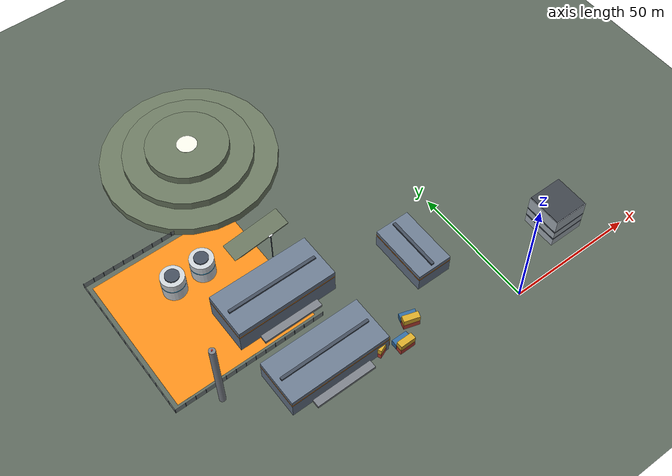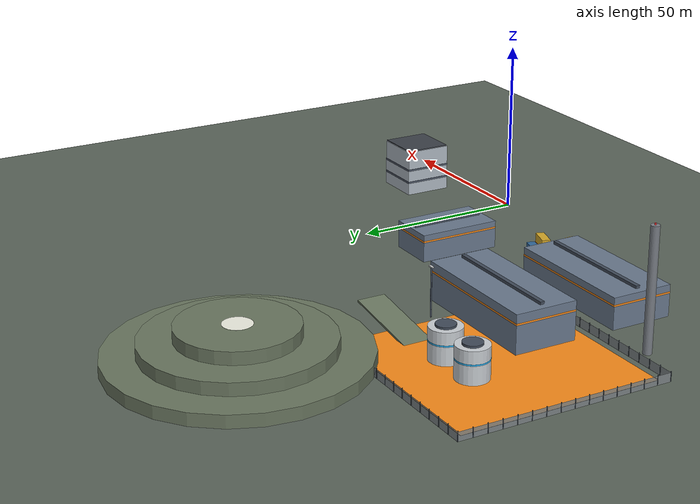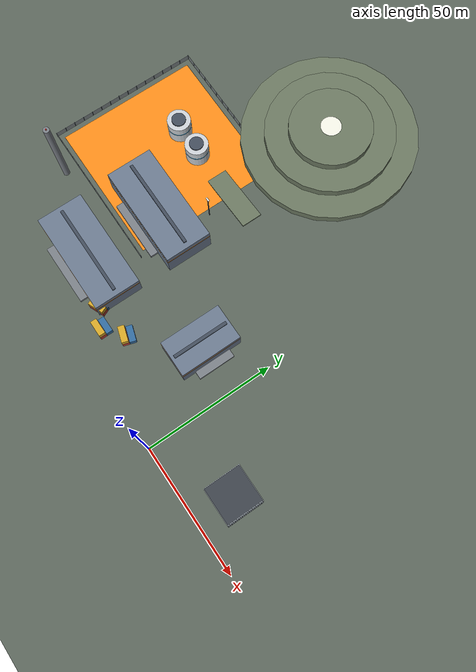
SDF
<sdf version="1.9">
 <world name="autonomous_city">
  <model name="ground">
   <static>true</static>
   <link name="link">
    <collision name="collision">
     <geometry><plane><normal>0 0 1</normal><size>600 600</size></plane></geometry>
     <surface><friction><ode><mu>100</mu><mu2>50</mu2></ode></friction></surface>
    </collision>
    <visual name="visual">
     <geometry><plane><normal>0 0 1</normal><size>600 600</size></plane></geometry>
     <material>
      <ambient>0.36 0.40 0.36 1</ambient>
      <diffuse>0.36 0.40 0.36 1</diffuse>
      <specular>0.15 0.15 0.15 1</specular>
     </material>
    </visual>
   </link>
  </model>
  <model name="building_01">
   <static>true</static>
   <pose>30 15 0 0 0 0.0</pose>
   <link name="link">
    <visual name="core">
     <pose>0 0 7.0 0 0 0</pose>
     <geometry><box><size>14.000 14.000 14.000</size></box></geometry>
     <material>
      <ambient>0.70 0.74 0.78 1</ambient>
      <diffuse>0.70 0.74 0.78 1</diffuse>
      <specular>0.15 0.15 0.15 1</specular>
     </material>
    </visual>
    <collision name="core_c">
     <pose>0 0 7.0 0 0 0</pose>
     <geometry><box><size>14.000 14.000 14.000</size></box></geometry>
    </collision>
    <visual name="band1">
     <pose>0 0 4.00 0 0 0</pose>
     <geometry><box><size>14.060 14.060 0.600</size></box></geometry>
     <material>
      <ambient>0.30 0.34 0.40 1</ambient>
      <diffuse>0.30 0.34 0.40 1</diffuse>
      <specular>0.15 0.15 0.15 1</specular>
     </material>
    </visual>
    <visual name="band2">
     <pose>0 0 8.00 0 0 0</pose>
     <geometry><box><size>14.060 14.060 0.600</size></box></geometry>
     <material>
      <ambient>0.30 0.34 0.40 1</ambient>
      <diffuse>0.30 0.34 0.40 1</diffuse>
      <specular>0.15 0.15 0.15 1</specular>
     </material>
    </visual>
    <visual name="roof">
     <pose>0 0 14.15 0 0 0</pose>
     <geometry><box><size>13.600 13.600 0.300</size></box></geometry>
     <material>
      <ambient>0.24 0.26 0.29 1</ambient>
      <diffuse>0.24 0.26 0.29 1</diffuse>
      <specular>0.15 0.15 0.15 1</specular>
     </material>
    </visual>
    <collision name="roof_c">
     <pose>0 0 14.15 0 0 0</pose>
     <geometry><box><size>13.600 13.600 0.300</size></box></geometry>
    </collision>
   </link>
  </model>
  <model name="warehouse_01">
   <static>true</static>
   <pose>-70 20 0 0 0 0.0</pose>
   <link name="link">
    <visual name="hall">
     <pose>0 0 4.5 0 0 0</pose>
     <geometry><box><size>40.000 18.000 9.000</size></box></geometry>
     <material>
      <ambient>0.42 0.48 0.56 1</ambient>
      <diffuse>0.42 0.48 0.56 1</diffuse>
      <specular>0.15 0.15 0.15 1</specular>
     </material>
    </visual>
    <collision name="hall_c">
     <pose>0 0 4.5 0 0 0</pose>
     <geometry><box><size>40.000 18.000 9.000</size></box></geometry>
    </collision>
    <visual name="ridge">
     <pose>0 0 9.4 0 0 0</pose>
     <geometry><box><size>36.000 1.200 0.800</size></box></geometry>
     <material>
      <ambient>0.26 0.30 0.36 1</ambient>
      <diffuse>0.26 0.30 0.36 1</diffuse>
      <specular>0.15 0.15 0.15 1</specular>
     </material>
    </visual>
    <collision name="ridge_c">
     <pose>0 0 9.4 0 0 0</pose>
     <geometry><box><size>36.000 1.200 0.800</size></box></geometry>
    </collision>
    <visual name="stripe">
     <pose>0 0 6.75 0 0 0</pose>
     <geometry><box><size>40.050 18.050 0.500</size></box></geometry>
     <material>
      <ambient>0.98 0.55 0.10 1</ambient>
      <diffuse>0.98 0.55 0.10 1</diffuse>
      <specular>0.15 0.15 0.15 1</specular>
     </material>
    </visual>
    <visual name="dock">
     <pose>0 -10.5 0.6 0 0 0</pose>
     <geometry><box><size>24.000 3.000 1.200</size></box></geometry>
     <material>
      <ambient>0.48 0.50 0.53 1</ambient>
      <diffuse>0.48 0.50 0.53 1</diffuse>
      <specular>0.15 0.15 0.15 1</specular>
     </material>
    </visual>
    <collision name="dock_c">
     <pose>0 -10.5 0.6 0 0 0</pose>
     <geometry><box><size>24.000 3.000 1.200</size></box></geometry>
    </collision>
   </link>
  </model>
  <model name="warehouse_02">
   <static>true</static>
   <pose>-70 50 0 0 0 0.0</pose>
   <link name="link">
    <visual name="hall">
     <pose>0 0 5.5 0 0 0</pose>
     <geometry><box><size>40.000 18.000 11.000</size></box></geometry>
     <material>
      <ambient>0.42 0.48 0.56 1</ambient>
      <diffuse>0.42 0.48 0.56 1</diffuse>
      <specular>0.15 0.15 0.15 1</specular>
     </material>
    </visual>
    <collision name="hall_c">
     <pose>0 0 5.5 0 0 0</pose>
     <geometry><box><size>40.000 18.000 11.000</size></box></geometry>
    </collision>
    <visual name="ridge">
     <pose>0 0 11.4 0 0 0</pose>
     <geometry><box><size>36.000 1.200 0.800</size></box></geometry>
     <material>
      <ambient>0.26 0.30 0.36 1</ambient>
      <diffuse>0.26 0.30 0.36 1</diffuse>
      <specular>0.15 0.15 0.15 1</specular>
     </material>
    </visual>
    <collision name="ridge_c">
     <pose>0 0 11.4 0 0 0</pose>
     <geometry><box><size>36.000 1.200 0.800</size></box></geometry>
    </collision>
    <visual name="stripe">
     <pose>0 0 8.25 0 0 0</pose>
     <geometry><box><size>40.050 18.050 0.500</size></box></geometry>
     <material>
      <ambient>0.98 0.55 0.10 1</ambient>
      <diffuse>0.98 0.55 0.10 1</diffuse>
      <specular>0.15 0.15 0.15 1</specular>
     </material>
    </visual>
    <visual name="dock">
     <pose>0 -10.5 0.6 0 0 0</pose>
     <geometry><box><size>24.000 3.000 1.200</size></box></geometry>
     <material>
      <ambient>0.48 0.50 0.53 1</ambient>
      <diffuse>0.48 0.50 0.53 1</diffuse>
      <specular>0.15 0.15 0.15 1</specular>
     </material>
    </visual>
    <collision name="dock_c">
     <pose>0 -10.5 0.6 0 0 0</pose>
     <geometry><box><size>24.000 3.000 1.200</size></box></geometry>
    </collision>
   </link>
  </model>
  <model name="warehouse_03">
   <static>true</static>
   <pose>-20 35 0 0 0 1.5708</pose>
   <link name="link">
    <visual name="hall">
     <pose>0 0 4.0 0 0 0</pose>
     <geometry><box><size>24.000 14.000 8.000</size></box></geometry>
     <material>
      <ambient>0.42 0.48 0.56 1</ambient>
      <diffuse>0.42 0.48 0.56 1</diffuse>
      <specular>0.15 0.15 0.15 1</specular>
     </material>
    </visual>
    <collision name="hall_c">
     <pose>0 0 4.0 0 0 0</pose>
     <geometry><box><size>24.000 14.000 8.000</size></box></geometry>
    </collision>
    <visual name="ridge">
     <pose>0 0 8.4 0 0 0</pose>
     <geometry><box><size>21.600 1.200 0.800</size></box></geometry>
     <material>
      <ambient>0.26 0.30 0.36 1</ambient>
      <diffuse>0.26 0.30 0.36 1</diffuse>
      <specular>0.15 0.15 0.15 1</specular>
     </material>
    </visual>
    <collision name="ridge_c">
     <pose>0 0 8.4 0 0 0</pose>
     <geometry><box><size>21.600 1.200 0.800</size></box></geometry>
    </collision>
    <visual name="stripe">
     <pose>0 0 6.0 0 0 0</pose>
     <geometry><box><size>24.050 14.050 0.500</size></box></geometry>
     <material>
      <ambient>0.98 0.55 0.10 1</ambient>
      <diffuse>0.98 0.55 0.10 1</diffuse>
      <specular>0.15 0.15 0.15 1</specular>
     </material>
    </visual>
    <visual name="dock">
     <pose>0 -8.5 0.6 0 0 0</pose>
     <geometry><box><size>14.400 3.000 1.200</size></box></geometry>
     <material>
      <ambient>0.48 0.50 0.53 1</ambient>
      <diffuse>0.48 0.50 0.53 1</diffuse>
      <specular>0.15 0.15 0.15 1</specular>
     </material>
    </visual>
    <collision name="dock_c">
     <pose>0 -8.5 0.6 0 0 0</pose>
     <geometry><box><size>14.400 3.000 1.200</size></box></geometry>
    </collision>
   </link>
  </model>
  <model name="tank_01">
   <static>true</static>
   <pose>-95 75 0 0 0 0</pose>
   <link name="link">
    <visual name="tank">
     <pose>0 0 4.5 0 0 0</pose>
     <geometry><cylinder><radius>4.500</radius><length>9.000</length></cylinder></geometry>
     <material>
      <ambient>0.80 0.82 0.84 1</ambient>
      <diffuse>0.80 0.82 0.84 1</diffuse>
      <specular>0.15 0.15 0.15 1</specular>
     </material>
    </visual>
    <collision name="tank_c">
     <pose>0 0 4.5 0 0 0</pose>
     <geometry><cylinder><radius>4.500</radius><length>9.000</length></cylinder></geometry>
    </collision>
    <visual name="cap">
     <pose>0 0 9.3 0 0 0</pose>
     <geometry><cylinder><radius>2.700</radius><length>0.600</length></cylinder></geometry>
     <material>
      <ambient>0.26 0.30 0.36 1</ambient>
      <diffuse>0.26 0.30 0.36 1</diffuse>
      <specular>0.15 0.15 0.15 1</specular>
     </material>
    </visual>
    <collision name="cap_c">
     <pose>0 0 9.3 0 0 0</pose>
     <geometry><cylinder><radius>2.700</radius><length>0.600</length></cylinder></geometry>
    </collision>
    <visual name="band">
     <pose>0 0 5.3999999999999995 0 0 0</pose>
     <geometry><cylinder><radius>4.530</radius><length>0.400</length></cylinder></geometry>
     <material>
      <ambient>0.16 0.70 0.96 1</ambient>
      <diffuse>0.16 0.70 0.96 1</diffuse>
      <specular>0.15 0.15 0.15 1</specular>
     </material>
    </visual>
   </link>
  </model>
  <model name="tank_02">
   <static>true</static>
   <pose>-83 75 0 0 0 0</pose>
   <link name="link">
    <visual name="tank">
     <pose>0 0 4.5 0 0 0</pose>
     <geometry><cylinder><radius>4.500</radius><length>9.000</length></cylinder></geometry>
     <material>
      <ambient>0.80 0.82 0.84 1</ambient>
      <diffuse>0.80 0.82 0.84 1</diffuse>
      <specular>0.15 0.15 0.15 1</specular>
     </material>
    </visual>
    <collision name="tank_c">
     <pose>0 0 4.5 0 0 0</pose>
     <geometry><cylinder><radius>4.500</radius><length>9.000</length></cylinder></geometry>
    </collision>
    <visual name="cap">
     <pose>0 0 9.3 0 0 0</pose>
     <geometry><cylinder><radius>2.700</radius><length>0.600</length></cylinder></geometry>
     <material>
      <ambient>0.26 0.30 0.36 1</ambient>
      <diffuse>0.26 0.30 0.36 1</diffuse>
      <specular>0.15 0.15 0.15 1</specular>
     </material>
    </visual>
    <collision name="cap_c">
     <pose>0 0 9.3 0 0 0</pose>
     <geometry><cylinder><radius>2.700</radius><length>0.600</length></cylinder></geometry>
    </collision>
    <visual name="band">
     <pose>0 0 5.3999999999999995 0 0 0</pose>
     <geometry><cylinder><radius>4.530</radius><length>0.400</length></cylinder></geometry>
     <material>
      <ambient>0.16 0.70 0.96 1</ambient>
      <diffuse>0.16 0.70 0.96 1</diffuse>
      <specular>0.15 0.15 0.15 1</specular>
     </material>
    </visual>
   </link>
  </model>
  <model name="chimney_01">
   <static>true</static>
   <pose>-105 30 0 0 0 0</pose>
   <link name="link">
    <visual name="mast">
     <pose>0 0 17.0 0 0 0</pose>
     <geometry><cylinder><radius>1.200</radius><length>34.000</length></cylinder></geometry>
     <material>
      <ambient>0.48 0.50 0.53 1</ambient>
      <diffuse>0.48 0.50 0.53 1</diffuse>
      <specular>0.15 0.15 0.15 1</specular>
     </material>
    </visual>
    <collision name="mast_c">
     <pose>0 0 17.0 0 0 0</pose>
     <geometry><cylinder><radius>1.200</radius><length>34.000</length></cylinder></geometry>
    </collision>
    <visual name="beacon">
     <pose>0 0 34.3 0 0 0</pose>
     <geometry><cylinder><radius>0.250</radius><length>0.500</length></cylinder></geometry>
     <material>
      <ambient>0.95 0.20 0.20 1</ambient>
      <diffuse>0.95 0.20 0.20 1</diffuse>
      <specular>0.15 0.15 0.15 1</specular>
      <emissive>0.6 0.1 0.1 1</emissive>
     </material>
    </visual>
   </link>
  </model>
  <model name="containers_01">
   <static>true</static>
   <pose>-45 8 0 0 0 0</pose>
   <link name="link">
    <visual name="c0">
     <pose>0 0.00 1.30 0 0 0</pose>
     <geometry><box><size>6.100 2.440 2.600</size></box></geometry>
     <material>
      <ambient>0.72 0.24 0.20 1</ambient>
      <diffuse>0.72 0.24 0.20 1</diffuse>
      <specular>0.15 0.15 0.15 1</specular>
     </material>
    </visual>
    <collision name="c0_c">
     <pose>0 0.00 1.30 0 0 0</pose>
     <geometry><box><size>6.100 2.440 2.600</size></box></geometry>
    </collision>
    <visual name="c1">
     <pose>0 2.60 1.30 0 0 0</pose>
     <geometry><box><size>6.100 2.440 2.600</size></box></geometry>
     <material>
      <ambient>0.20 0.42 0.62 1</ambient>
      <diffuse>0.20 0.42 0.62 1</diffuse>
      <specular>0.15 0.15 0.15 1</specular>
     </material>
    </visual>
    <collision name="c1_c">
     <pose>0 2.60 1.30 0 0 0</pose>
     <geometry><box><size>6.100 2.440 2.600</size></box></geometry>
    </collision>
    <visual name="c2">
     <pose>0 0.00 3.90 0 0 0</pose>
     <geometry><box><size>6.100 2.440 2.600</size></box></geometry>
     <material>
      <ambient>0.84 0.66 0.16 1</ambient>
      <diffuse>0.84 0.66 0.16 1</diffuse>
      <specular>0.15 0.15 0.15 1</specular>
     </material>
    </visual>
    <collision name="c2_c">
     <pose>0 0.00 3.90 0 0 0</pose>
     <geometry><box><size>6.100 2.440 2.600</size></box></geometry>
    </collision>
   </link>
  </model>
  <model name="containers_02">
   <static>true</static>
   <pose>-52 12 0 0 0 0.4</pose>
   <link name="link">
    <visual name="c0">
     <pose>0 0.00 1.30 0 0 0</pose>
     <geometry><box><size>6.100 2.440 2.600</size></box></geometry>
     <material>
      <ambient>0.72 0.24 0.20 1</ambient>
      <diffuse>0.72 0.24 0.20 1</diffuse>
      <specular>0.15 0.15 0.15 1</specular>
     </material>
    </visual>
    <collision name="c0_c">
     <pose>0 0.00 1.30 0 0 0</pose>
     <geometry><box><size>6.100 2.440 2.600</size></box></geometry>
    </collision>
    <visual name="c1">
     <pose>0 2.60 1.30 0 0 0</pose>
     <geometry><box><size>6.100 2.440 2.600</size></box></geometry>
     <material>
      <ambient>0.20 0.42 0.62 1</ambient>
      <diffuse>0.20 0.42 0.62 1</diffuse>
      <specular>0.15 0.15 0.15 1</specular>
     </material>
    </visual>
    <collision name="c1_c">
     <pose>0 2.60 1.30 0 0 0</pose>
     <geometry><box><size>6.100 2.440 2.600</size></box></geometry>
    </collision>
    <visual name="c2">
     <pose>0 0.00 3.90 0 0 0</pose>
     <geometry><box><size>6.100 2.440 2.600</size></box></geometry>
     <material>
      <ambient>0.84 0.66 0.16 1</ambient>
      <diffuse>0.84 0.66 0.16 1</diffuse>
      <specular>0.15 0.15 0.15 1</specular>
     </material>
    </visual>
    <collision name="c2_c">
     <pose>0 0.00 3.90 0 0 0</pose>
     <geometry><box><size>6.100 2.440 2.600</size></box></geometry>
    </collision>
   </link>
  </model>
  <model name="containers_03">
   <static>true</static>
   <pose>-38 14 0 0 0 -0.3</pose>
   <link name="link">
    <visual name="c0">
     <pose>0 0.00 1.30 0 0 0</pose>
     <geometry><box><size>6.100 2.440 2.600</size></box></geometry>
     <material>
      <ambient>0.72 0.24 0.20 1</ambient>
      <diffuse>0.72 0.24 0.20 1</diffuse>
      <specular>0.15 0.15 0.15 1</specular>
     </material>
    </visual>
    <collision name="c0_c">
     <pose>0 0.00 1.30 0 0 0</pose>
     <geometry><box><size>6.100 2.440 2.600</size></box></geometry>
    </collision>
    <visual name="c1">
     <pose>0 2.60 1.30 0 0 0</pose>
     <geometry><box><size>6.100 2.440 2.600</size></box></geometry>
     <material>
      <ambient>0.20 0.42 0.62 1</ambient>
      <diffuse>0.20 0.42 0.62 1</diffuse>
      <specular>0.15 0.15 0.15 1</specular>
     </material>
    </visual>
    <collision name="c1_c">
     <pose>0 2.60 1.30 0 0 0</pose>
     <geometry><box><size>6.100 2.440 2.600</size></box></geometry>
    </collision>
    <visual name="c2">
     <pose>0 0.00 3.90 0 0 0</pose>
     <geometry><box><size>6.100 2.440 2.600</size></box></geometry>
     <material>
      <ambient>0.84 0.66 0.16 1</ambient>
      <diffuse>0.84 0.66 0.16 1</diffuse>
      <specular>0.15 0.15 0.15 1</specular>
     </material>
    </visual>
    <collision name="c2_c">
     <pose>0 0.00 3.90 0 0 0</pose>
     <geometry><box><size>6.100 2.440 2.600</size></box></geometry>
    </collision>
   </link>
  </model>
  <model name="restricted_fence_n">
   <static>true</static>
   <pose>-90 95 0 0 0 0.0</pose>
   <link name="link">
    <visual name="mesh">
     <pose>0 0 1.2 0 0 0</pose>
     <geometry><box><size>60.000 0.080 2.400</size></box></geometry>
     <material>
      <ambient>0.55 0.58 0.60 0.85</ambient>
      <diffuse>0.55 0.58 0.60 0.85</diffuse>
      <specular>0.15 0.15 0.15 1</specular>
     </material>
    </visual>
    <collision name="mesh_c">
     <pose>0 0 1.2 0 0 0</pose>
     <geometry><box><size>60.000 0.080 2.400</size></box></geometry>
    </collision>
    <visual name="post0">
     <pose>-30.00 0 1.3499999999999999 0 0 0</pose>
     <geometry><box><size>0.150 0.150 2.700</size></box></geometry>
     <material>
      <ambient>0.26 0.30 0.36 1</ambient>
      <diffuse>0.26 0.30 0.36 1</diffuse>
      <specular>0.15 0.15 0.15 1</specular>
     </material>
    </visual>
    <visual name="post1">
     <pose>-26.00 0 1.3499999999999999 0 0 0</pose>
     <geometry><box><size>0.150 0.150 2.700</size></box></geometry>
     <material>
      <ambient>0.26 0.30 0.36 1</ambient>
      <diffuse>0.26 0.30 0.36 1</diffuse>
      <specular>0.15 0.15 0.15 1</specular>
     </material>
    </visual>
    <visual name="post2">
     <pose>-22.00 0 1.3499999999999999 0 0 0</pose>
     <geometry><box><size>0.150 0.150 2.700</size></box></geometry>
     <material>
      <ambient>0.26 0.30 0.36 1</ambient>
      <diffuse>0.26 0.30 0.36 1</diffuse>
      <specular>0.15 0.15 0.15 1</specular>
     </material>
    </visual>
    <visual name="post3">
     <pose>-18.00 0 1.3499999999999999 0 0 0</pose>
     <geometry><box><size>0.150 0.150 2.700</size></box></geometry>
     <material>
      <ambient>0.26 0.30 0.36 1</ambient>
      <diffuse>0.26 0.30 0.36 1</diffuse>
      <specular>0.15 0.15 0.15 1</specular>
     </material>
    </visual>
    <visual name="post4">
     <pose>-14.00 0 1.3499999999999999 0 0 0</pose>
     <geometry><box><size>0.150 0.150 2.700</size></box></geometry>
     <material>
      <ambient>0.26 0.30 0.36 1</ambient>
      <diffuse>0.26 0.30 0.36 1</diffuse>
      <specular>0.15 0.15 0.15 1</specular>
     </material>
    </visual>
    <visual name="post5">
     <pose>-10.00 0 1.3499999999999999 0 0 0</pose>
     <geometry><box><size>0.150 0.150 2.700</size></box></geometry>
     <material>
      <ambient>0.26 0.30 0.36 1</ambient>
      <diffuse>0.26 0.30 0.36 1</diffuse>
      <specular>0.15 0.15 0.15 1</specular>
     </material>
    </visual>
    <visual name="post6">
     <pose>-6.00 0 1.3499999999999999 0 0 0</pose>
     <geometry><box><size>0.150 0.150 2.700</size></box></geometry>
     <material>
      <ambient>0.26 0.30 0.36 1</ambient>
      <diffuse>0.26 0.30 0.36 1</diffuse>
      <specular>0.15 0.15 0.15 1</specular>
     </material>
    </visual>
    <visual name="post7">
     <pose>-2.00 0 1.3499999999999999 0 0 0</pose>
     <geometry><box><size>0.150 0.150 2.700</size></box></geometry>
     <material>
      <ambient>0.26 0.30 0.36 1</ambient>
      <diffuse>0.26 0.30 0.36 1</diffuse>
      <specular>0.15 0.15 0.15 1</specular>
     </material>
    </visual>
    <visual name="post8">
     <pose>2.00 0 1.3499999999999999 0 0 0</pose>
     <geometry><box><size>0.150 0.150 2.700</size></box></geometry>
     <material>
      <ambient>0.26 0.30 0.36 1</ambient>
      <diffuse>0.26 0.30 0.36 1</diffuse>
      <specular>0.15 0.15 0.15 1</specular>
     </material>
    </visual>
    <visual name="post9">
     <pose>6.00 0 1.3499999999999999 0 0 0</pose>
     <geometry><box><size>0.150 0.150 2.700</size></box></geometry>
     <material>
      <ambient>0.26 0.30 0.36 1</ambient>
      <diffuse>0.26 0.30 0.36 1</diffuse>
      <specular>0.15 0.15 0.15 1</specular>
     </material>
    </visual>
    <visual name="post10">
     <pose>10.00 0 1.3499999999999999 0 0 0</pose>
     <geometry><box><size>0.150 0.150 2.700</size></box></geometry>
     <material>
      <ambient>0.26 0.30 0.36 1</ambient>
      <diffuse>0.26 0.30 0.36 1</diffuse>
      <specular>0.15 0.15 0.15 1</specular>
     </material>
    </visual>
    <visual name="post11">
     <pose>14.00 0 1.3499999999999999 0 0 0</pose>
     <geometry><box><size>0.150 0.150 2.700</size></box></geometry>
     <material>
      <ambient>0.26 0.30 0.36 1</ambient>
      <diffuse>0.26 0.30 0.36 1</diffuse>
      <specular>0.15 0.15 0.15 1</specular>
     </material>
    </visual>
    <visual name="post12">
     <pose>18.00 0 1.3499999999999999 0 0 0</pose>
     <geometry><box><size>0.150 0.150 2.700</size></box></geometry>
     <material>
      <ambient>0.26 0.30 0.36 1</ambient>
      <diffuse>0.26 0.30 0.36 1</diffuse>
      <specular>0.15 0.15 0.15 1</specular>
     </material>
    </visual>
    <visual name="post13">
     <pose>22.00 0 1.3499999999999999 0 0 0</pose>
     <geometry><box><size>0.150 0.150 2.700</size></box></geometry>
     <material>
      <ambient>0.26 0.30 0.36 1</ambient>
      <diffuse>0.26 0.30 0.36 1</diffuse>
      <specular>0.15 0.15 0.15 1</specular>
     </material>
    </visual>
    <visual name="post14">
     <pose>26.00 0 1.3499999999999999 0 0 0</pose>
     <geometry><box><size>0.150 0.150 2.700</size></box></geometry>
     <material>
      <ambient>0.26 0.30 0.36 1</ambient>
      <diffuse>0.26 0.30 0.36 1</diffuse>
      <specular>0.15 0.15 0.15 1</specular>
     </material>
    </visual>
    <visual name="post15">
     <pose>30.00 0 1.3499999999999999 0 0 0</pose>
     <geometry><box><size>0.150 0.150 2.700</size></box></geometry>
     <material>
      <ambient>0.26 0.30 0.36 1</ambient>
      <diffuse>0.26 0.30 0.36 1</diffuse>
      <specular>0.15 0.15 0.15 1</specular>
     </material>
    </visual>
   </link>
  </model>
  <model name="restricted_fence_w">
   <static>true</static>
   <pose>-120 65 0 0 0 1.5708</pose>
   <link name="link">
    <visual name="mesh">
     <pose>0 0 1.2 0 0 0</pose>
     <geometry><box><size>60.000 0.080 2.400</size></box></geometry>
     <material>
      <ambient>0.55 0.58 0.60 0.85</ambient>
      <diffuse>0.55 0.58 0.60 0.85</diffuse>
      <specular>0.15 0.15 0.15 1</specular>
     </material>
    </visual>
    <collision name="mesh_c">
     <pose>0 0 1.2 0 0 0</pose>
     <geometry><box><size>60.000 0.080 2.400</size></box></geometry>
    </collision>
    <visual name="post0">
     <pose>-30.00 0 1.3499999999999999 0 0 0</pose>
     <geometry><box><size>0.150 0.150 2.700</size></box></geometry>
     <material>
      <ambient>0.26 0.30 0.36 1</ambient>
      <diffuse>0.26 0.30 0.36 1</diffuse>
      <specular>0.15 0.15 0.15 1</specular>
     </material>
    </visual>
    <visual name="post1">
     <pose>-26.00 0 1.3499999999999999 0 0 0</pose>
     <geometry><box><size>0.150 0.150 2.700</size></box></geometry>
     <material>
      <ambient>0.26 0.30 0.36 1</ambient>
      <diffuse>0.26 0.30 0.36 1</diffuse>
      <specular>0.15 0.15 0.15 1</specular>
     </material>
    </visual>
    <visual name="post2">
     <pose>-22.00 0 1.3499999999999999 0 0 0</pose>
     <geometry><box><size>0.150 0.150 2.700</size></box></geometry>
     <material>
      <ambient>0.26 0.30 0.36 1</ambient>
      <diffuse>0.26 0.30 0.36 1</diffuse>
      <specular>0.15 0.15 0.15 1</specular>
     </material>
    </visual>
    <visual name="post3">
     <pose>-18.00 0 1.3499999999999999 0 0 0</pose>
     <geometry><box><size>0.150 0.150 2.700</size></box></geometry>
     <material>
      <ambient>0.26 0.30 0.36 1</ambient>
      <diffuse>0.26 0.30 0.36 1</diffuse>
      <specular>0.15 0.15 0.15 1</specular>
     </material>
    </visual>
    <visual name="post4">
     <pose>-14.00 0 1.3499999999999999 0 0 0</pose>
     <geometry><box><size>0.150 0.150 2.700</size></box></geometry>
     <material>
      <ambient>0.26 0.30 0.36 1</ambient>
      <diffuse>0.26 0.30 0.36 1</diffuse>
      <specular>0.15 0.15 0.15 1</specular>
     </material>
    </visual>
    <visual name="post5">
     <pose>-10.00 0 1.3499999999999999 0 0 0</pose>
     <geometry><box><size>0.150 0.150 2.700</size></box></geometry>
     <material>
      <ambient>0.26 0.30 0.36 1</ambient>
      <diffuse>0.26 0.30 0.36 1</diffuse>
      <specular>0.15 0.15 0.15 1</specular>
     </material>
    </visual>
    <visual name="post6">
     <pose>-6.00 0 1.3499999999999999 0 0 0</pose>
     <geometry><box><size>0.150 0.150 2.700</size></box></geometry>
     <material>
      <ambient>0.26 0.30 0.36 1</ambient>
      <diffuse>0.26 0.30 0.36 1</diffuse>
      <specular>0.15 0.15 0.15 1</specular>
     </material>
    </visual>
    <visual name="post7">
     <pose>-2.00 0 1.3499999999999999 0 0 0</pose>
     <geometry><box><size>0.150 0.150 2.700</size></box></geometry>
     <material>
      <ambient>0.26 0.30 0.36 1</ambient>
      <diffuse>0.26 0.30 0.36 1</diffuse>
      <specular>0.15 0.15 0.15 1</specular>
     </material>
    </visual>
    <visual name="post8">
     <pose>2.00 0 1.3499999999999999 0 0 0</pose>
     <geometry><box><size>0.150 0.150 2.700</size></box></geometry>
     <material>
      <ambient>0.26 0.30 0.36 1</ambient>
      <diffuse>0.26 0.30 0.36 1</diffuse>
      <specular>0.15 0.15 0.15 1</specular>
     </material>
    </visual>
    <visual name="post9">
     <pose>6.00 0 1.3499999999999999 0 0 0</pose>
     <geometry><box><size>0.150 0.150 2.700</size></box></geometry>
     <material>
      <ambient>0.26 0.30 0.36 1</ambient>
      <diffuse>0.26 0.30 0.36 1</diffuse>
      <specular>0.15 0.15 0.15 1</specular>
     </material>
    </visual>
    <visual name="post10">
     <pose>10.00 0 1.3499999999999999 0 0 0</pose>
     <geometry><box><size>0.150 0.150 2.700</size></box></geometry>
     <material>
      <ambient>0.26 0.30 0.36 1</ambient>
      <diffuse>0.26 0.30 0.36 1</diffuse>
      <specular>0.15 0.15 0.15 1</specular>
     </material>
    </visual>
    <visual name="post11">
     <pose>14.00 0 1.3499999999999999 0 0 0</pose>
     <geometry><box><size>0.150 0.150 2.700</size></box></geometry>
     <material>
      <ambient>0.26 0.30 0.36 1</ambient>
      <diffuse>0.26 0.30 0.36 1</diffuse>
      <specular>0.15 0.15 0.15 1</specular>
     </material>
    </visual>
    <visual name="post12">
     <pose>18.00 0 1.3499999999999999 0 0 0</pose>
     <geometry><box><size>0.150 0.150 2.700</size></box></geometry>
     <material>
      <ambient>0.26 0.30 0.36 1</ambient>
      <diffuse>0.26 0.30 0.36 1</diffuse>
      <specular>0.15 0.15 0.15 1</specular>
     </material>
    </visual>
    <visual name="post13">
     <pose>22.00 0 1.3499999999999999 0 0 0</pose>
     <geometry><box><size>0.150 0.150 2.700</size></box></geometry>
     <material>
      <ambient>0.26 0.30 0.36 1</ambient>
      <diffuse>0.26 0.30 0.36 1</diffuse>
      <specular>0.15 0.15 0.15 1</specular>
     </material>
    </visual>
    <visual name="post14">
     <pose>26.00 0 1.3499999999999999 0 0 0</pose>
     <geometry><box><size>0.150 0.150 2.700</size></box></geometry>
     <material>
      <ambient>0.26 0.30 0.36 1</ambient>
      <diffuse>0.26 0.30 0.36 1</diffuse>
      <specular>0.15 0.15 0.15 1</specular>
     </material>
    </visual>
    <visual name="post15">
     <pose>30.00 0 1.3499999999999999 0 0 0</pose>
     <geometry><box><size>0.150 0.150 2.700</size></box></geometry>
     <material>
      <ambient>0.26 0.30 0.36 1</ambient>
      <diffuse>0.26 0.30 0.36 1</diffuse>
      <specular>0.15 0.15 0.15 1</specular>
     </material>
    </visual>
   </link>
  </model>
  <model name="restricted_fence_s">
   <static>true</static>
   <pose>-90 35 0 0 0 0.0</pose>
   <link name="link">
    <visual name="mesh">
     <pose>0 0 1.2 0 0 0</pose>
     <geometry><box><size>60.000 0.080 2.400</size></box></geometry>
     <material>
      <ambient>0.55 0.58 0.60 0.85</ambient>
      <diffuse>0.55 0.58 0.60 0.85</diffuse>
      <specular>0.15 0.15 0.15 1</specular>
     </material>
    </visual>
    <collision name="mesh_c">
     <pose>0 0 1.2 0 0 0</pose>
     <geometry><box><size>60.000 0.080 2.400</size></box></geometry>
    </collision>
    <visual name="post0">
     <pose>-30.00 0 1.3499999999999999 0 0 0</pose>
     <geometry><box><size>0.150 0.150 2.700</size></box></geometry>
     <material>
      <ambient>0.26 0.30 0.36 1</ambient>
      <diffuse>0.26 0.30 0.36 1</diffuse>
      <specular>0.15 0.15 0.15 1</specular>
     </material>
    </visual>
    <visual name="post1">
     <pose>-26.00 0 1.3499999999999999 0 0 0</pose>
     <geometry><box><size>0.150 0.150 2.700</size></box></geometry>
     <material>
      <ambient>0.26 0.30 0.36 1</ambient>
      <diffuse>0.26 0.30 0.36 1</diffuse>
      <specular>0.15 0.15 0.15 1</specular>
     </material>
    </visual>
    <visual name="post2">
     <pose>-22.00 0 1.3499999999999999 0 0 0</pose>
     <geometry><box><size>0.150 0.150 2.700</size></box></geometry>
     <material>
      <ambient>0.26 0.30 0.36 1</ambient>
      <diffuse>0.26 0.30 0.36 1</diffuse>
      <specular>0.15 0.15 0.15 1</specular>
     </material>
    </visual>
    <visual name="post3">
     <pose>-18.00 0 1.3499999999999999 0 0 0</pose>
     <geometry><box><size>0.150 0.150 2.700</size></box></geometry>
     <material>
      <ambient>0.26 0.30 0.36 1</ambient>
      <diffuse>0.26 0.30 0.36 1</diffuse>
      <specular>0.15 0.15 0.15 1</specular>
     </material>
    </visual>
    <visual name="post4">
     <pose>-14.00 0 1.3499999999999999 0 0 0</pose>
     <geometry><box><size>0.150 0.150 2.700</size></box></geometry>
     <material>
      <ambient>0.26 0.30 0.36 1</ambient>
      <diffuse>0.26 0.30 0.36 1</diffuse>
      <specular>0.15 0.15 0.15 1</specular>
     </material>
    </visual>
    <visual name="post5">
     <pose>-10.00 0 1.3499999999999999 0 0 0</pose>
     <geometry><box><size>0.150 0.150 2.700</size></box></geometry>
     <material>
      <ambient>0.26 0.30 0.36 1</ambient>
      <diffuse>0.26 0.30 0.36 1</diffuse>
      <specular>0.15 0.15 0.15 1</specular>
     </material>
    </visual>
    <visual name="post6">
     <pose>-6.00 0 1.3499999999999999 0 0 0</pose>
     <geometry><box><size>0.150 0.150 2.700</size></box></geometry>
     <material>
      <ambient>0.26 0.30 0.36 1</ambient>
      <diffuse>0.26 0.30 0.36 1</diffuse>
      <specular>0.15 0.15 0.15 1</specular>
     </material>
    </visual>
    <visual name="post7">
     <pose>-2.00 0 1.3499999999999999 0 0 0</pose>
     <geometry><box><size>0.150 0.150 2.700</size></box></geometry>
     <material>
      <ambient>0.26 0.30 0.36 1</ambient>
      <diffuse>0.26 0.30 0.36 1</diffuse>
      <specular>0.15 0.15 0.15 1</specular>
     </material>
    </visual>
    <visual name="post8">
     <pose>2.00 0 1.3499999999999999 0 0 0</pose>
     <geometry><box><size>0.150 0.150 2.700</size></box></geometry>
     <material>
      <ambient>0.26 0.30 0.36 1</ambient>
      <diffuse>0.26 0.30 0.36 1</diffuse>
      <specular>0.15 0.15 0.15 1</specular>
     </material>
    </visual>
    <visual name="post9">
     <pose>6.00 0 1.3499999999999999 0 0 0</pose>
     <geometry><box><size>0.150 0.150 2.700</size></box></geometry>
     <material>
      <ambient>0.26 0.30 0.36 1</ambient>
      <diffuse>0.26 0.30 0.36 1</diffuse>
      <specular>0.15 0.15 0.15 1</specular>
     </material>
    </visual>
    <visual name="post10">
     <pose>10.00 0 1.3499999999999999 0 0 0</pose>
     <geometry><box><size>0.150 0.150 2.700</size></box></geometry>
     <material>
      <ambient>0.26 0.30 0.36 1</ambient>
      <diffuse>0.26 0.30 0.36 1</diffuse>
      <specular>0.15 0.15 0.15 1</specular>
     </material>
    </visual>
    <visual name="post11">
     <pose>14.00 0 1.3499999999999999 0 0 0</pose>
     <geometry><box><size>0.150 0.150 2.700</size></box></geometry>
     <material>
      <ambient>0.26 0.30 0.36 1</ambient>
      <diffuse>0.26 0.30 0.36 1</diffuse>
      <specular>0.15 0.15 0.15 1</specular>
     </material>
    </visual>
    <visual name="post12">
     <pose>18.00 0 1.3499999999999999 0 0 0</pose>
     <geometry><box><size>0.150 0.150 2.700</size></box></geometry>
     <material>
      <ambient>0.26 0.30 0.36 1</ambient>
      <diffuse>0.26 0.30 0.36 1</diffuse>
      <specular>0.15 0.15 0.15 1</specular>
     </material>
    </visual>
    <visual name="post13">
     <pose>22.00 0 1.3499999999999999 0 0 0</pose>
     <geometry><box><size>0.150 0.150 2.700</size></box></geometry>
     <material>
      <ambient>0.26 0.30 0.36 1</ambient>
      <diffuse>0.26 0.30 0.36 1</diffuse>
      <specular>0.15 0.15 0.15 1</specular>
     </material>
    </visual>
    <visual name="post14">
     <pose>26.00 0 1.3499999999999999 0 0 0</pose>
     <geometry><box><size>0.150 0.150 2.700</size></box></geometry>
     <material>
      <ambient>0.26 0.30 0.36 1</ambient>
      <diffuse>0.26 0.30 0.36 1</diffuse>
      <specular>0.15 0.15 0.15 1</specular>
     </material>
    </visual>
    <visual name="post15">
     <pose>30.00 0 1.3499999999999999 0 0 0</pose>
     <geometry><box><size>0.150 0.150 2.700</size></box></geometry>
     <material>
      <ambient>0.26 0.30 0.36 1</ambient>
      <diffuse>0.26 0.30 0.36 1</diffuse>
      <specular>0.15 0.15 0.15 1</specular>
     </material>
    </visual>
   </link>
  </model>
  <model name="restricted_zone">
   <static>true</static>
   <pose>-90 65 0 0 0 0.0</pose>
   <link name="link">
    <visual name="mark">
     <pose>0 0 0.05 0 0 0</pose>
     <geometry><box><size>56.000 56.000 0.015</size></box></geometry>
     <material>
      <ambient>0.98 0.55 0.10 1</ambient>
      <diffuse>0.98 0.55 0.10 1</diffuse>
      <specular>0.15 0.15 0.15 1</specular>
     </material>
    </visual>
   </link>
  </model>
  <model name="ind_mast_01">
   <static>true</static>
   <pose>-60 65 0 0 0 0</pose>
   <link name="link">
    <visual name="mast">
     <pose>0 0 7.0 0 0 0</pose>
     <geometry><cylinder><radius>0.180</radius><length>14.000</length></cylinder></geometry>
     <material>
      <ambient>0.26 0.30 0.36 1</ambient>
      <diffuse>0.26 0.30 0.36 1</diffuse>
      <specular>0.15 0.15 0.15 1</specular>
     </material>
    </visual>
    <collision name="mast_c">
     <pose>0 0 7.0 0 0 0</pose>
     <geometry><cylinder><radius>0.180</radius><length>14.000</length></cylinder></geometry>
    </collision>
    <visual name="head">
     <pose>0 0 14.15 0 0 0</pose>
     <geometry><box><size>1.600 0.600 0.300</size></box></geometry>
     <material>
      <ambient>0.92 0.93 0.94 1</ambient>
      <diffuse>0.92 0.93 0.94 1</diffuse>
      <specular>0.15 0.15 0.15 1</specular>
      <emissive>0.5 0.5 0.45 1</emissive>
     </material>
    </visual>
   </link>
  </model>
  <model name="hill_01">
   <static>true</static>
   <pose>-60 120 0 0 0 0</pose>
   <link name="link">
    <visual name="level0">
     <pose>0 0 1.75 0 0 0</pose>
     <geometry><cylinder><radius>34.000</radius><length>3.500</length></cylinder></geometry>
     <material>
      <ambient>0.42 0.47 0.38 1</ambient>
      <diffuse>0.42 0.47 0.38 1</diffuse>
      <specular>0.15 0.15 0.15 1</specular>
     </material>
    </visual>
    <collision name="level0_c">
     <pose>0 0 1.75 0 0 0</pose>
     <geometry><cylinder><radius>34.000</radius><length>3.500</length></cylinder></geometry>
    </collision>
    <visual name="level1">
     <pose>0 0 5.25 0 0 0</pose>
     <geometry><cylinder><radius>25.000</radius><length>3.500</length></cylinder></geometry>
     <material>
      <ambient>0.42 0.47 0.38 1</ambient>
      <diffuse>0.42 0.47 0.38 1</diffuse>
      <specular>0.15 0.15 0.15 1</specular>
     </material>
    </visual>
    <collision name="level1_c">
     <pose>0 0 5.25 0 0 0</pose>
     <geometry><cylinder><radius>25.000</radius><length>3.500</length></cylinder></geometry>
    </collision>
    <visual name="level2">
     <pose>0 0 8.75 0 0 0</pose>
     <geometry><cylinder><radius>16.000</radius><length>3.500</length></cylinder></geometry>
     <material>
      <ambient>0.42 0.47 0.38 1</ambient>
      <diffuse>0.42 0.47 0.38 1</diffuse>
      <specular>0.15 0.15 0.15 1</specular>
     </material>
    </visual>
    <collision name="level2_c">
     <pose>0 0 8.75 0 0 0</pose>
     <geometry><cylinder><radius>16.000</radius><length>3.500</length></cylinder></geometry>
    </collision>
    <visual name="top_mark">
     <pose>0 0 10.51 0 0 0</pose>
     <geometry><cylinder><radius>4.000</radius><length>0.020</length></cylinder></geometry>
     <material>
      <ambient>0.95 0.95 0.90 1</ambient>
      <diffuse>0.95 0.95 0.90 1</diffuse>
      <specular>0.15 0.15 0.15 1</specular>
     </material>
    </visual>
   </link>
  </model>
  <model name="hill_ramp">
   <static>true</static>
   <pose>-60 76 1.75 0 0 0.0</pose>
   <link name="link">
    <visual name="slab">
     <pose>0 0 -0.25 0 -0.1448 0</pose>
     <geometry><box><size>24.254 8.000 0.500</size></box></geometry>
     <material>
      <ambient>0.42 0.47 0.38 1</ambient>
      <diffuse>0.42 0.47 0.38 1</diffuse>
      <specular>0.15 0.15 0.15 1</specular>
     </material>
    </visual>
    <collision name="slab_c">
     <pose>0 0 -0.25 0 -0.1448 0</pose>
     <geometry><box><size>24.254 8.000 0.500</size></box></geometry>
    </collision>
   </link>
  </model>
 </world>
</sdf>
